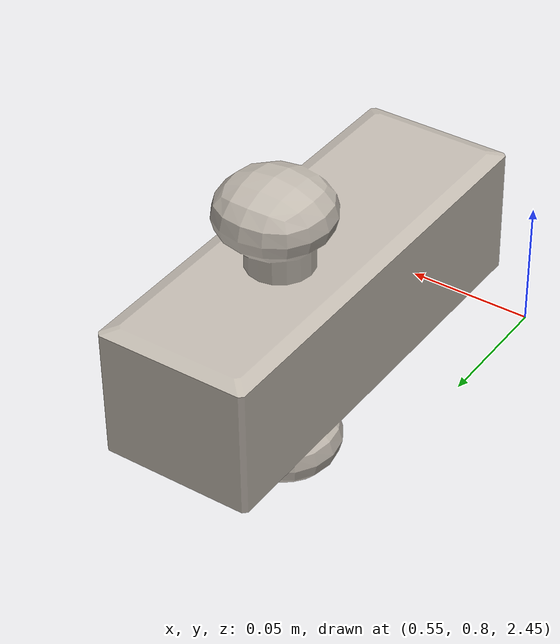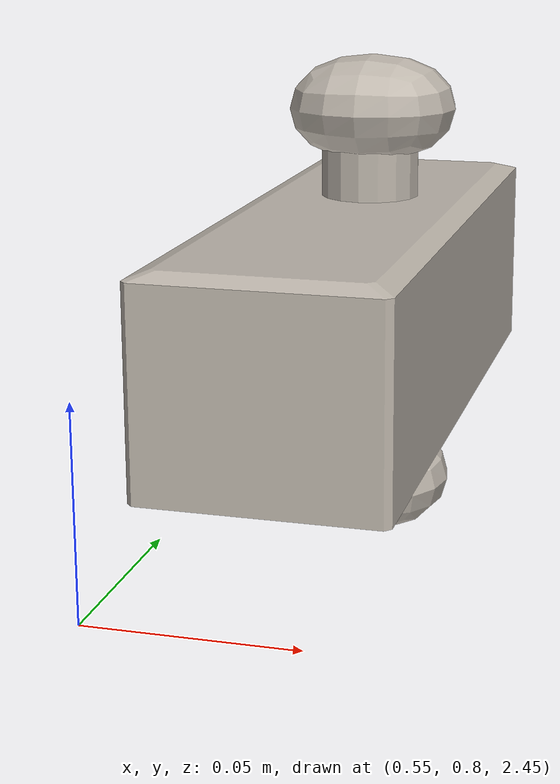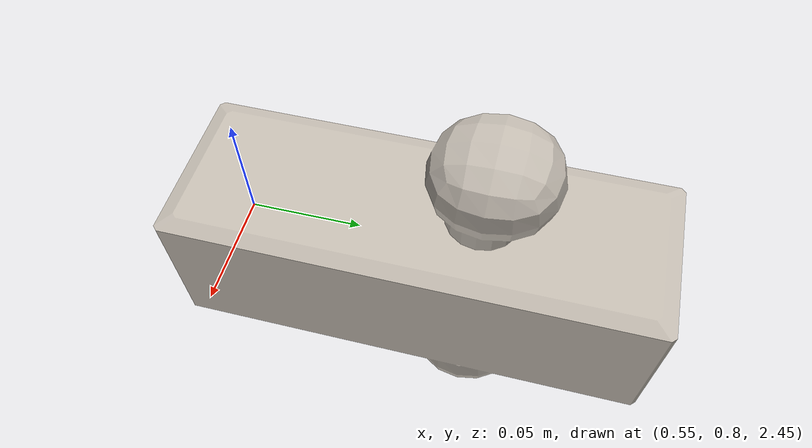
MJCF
<mujoco model="StandardKnob1_382240c9">
  <compiler autolimits="true" boundmass="0.01" angle="radian"/>
  <default>
    <default class="/">
      <default class="__VISUAL_MJT__">
        <geom contype="0" conaffinity="0" group="0" mass="1e-08"/>
      </default>
      <default class="__STRUCTURAL_MJT__">
        <geom contype="8" conaffinity="15" group="4" friction="0.90000000000000002 0.90000000000000002 0.001" density="500" solref="0.025000000000000001 1" solimp="0.998 0.998 0.001"/>
      </default>
      <default class="__DYNAMIC_MJT__">
        <geom contype="1" conaffinity="15" group="4" friction="0.90000000000000002 0.90000000000000002 0.001" density="500" solref="0.025000000000000001 1" solimp="0.998 0.998 0.001"/>
      </default>
      <default class="__ARTICULABLE_DYNAMIC_MJT__">
        <geom contype="0" conaffinity="7" group="4" friction="0.90000000000000002 0.90000000000000002 0.001" density="500" solref="0.025000000000000001 1" solimp="0.998 0.998 0.001"/>
      </default>
    </default>
  </default>
  <asset>
    <texture name="Copper_AlbedoTransparency" type="2d" file="Copper_AlbedoTransparency.png"/>
    <material name="material_Copper_AlbedoTransparency" class="/" texture="Copper_AlbedoTransparency" specular="0.5" shininess="0.5" rgba="1 1 1 1"/>
    <mesh name="StandardKnob1_382240c9_StandardKnob1_382240c9" class="/" file="StandardKnob1_382240c9_StandardKnob1_382240c9/StandardKnob1_382240c9_StandardKnob1_382240c9.obj" scale="1 1 1" inertia="legacy"/>
  </asset>
  <worldbody>
    <body name="StandardKnob1_382240c9">
      <body name="StandardKnob1_382240c9_StandardKnob1_382240c9" pos="-0 0 0" quat="1 0 0 0">
        <geom name="StandardKnob1_382240c9_StandardKnob1_382240c9" class="__VISUAL_MJT__" type="mesh" material="material_Copper_AlbedoTransparency" mesh="StandardKnob1_382240c9_StandardKnob1_382240c9"/>
        <geom name="StandardKnob1_382240c9_StandardKnob1_382240c9_PrimitiveCollider_0" class="__DYNAMIC_MJT__" type="box" size="0.03026885911822319 0.083424091339111328 0.026651591062545776" rgba="0 1 0 1" pos="0.58859997987747192 0.88700002431869507 2.5" quat="0 1 0 0"/>
        <geom name="StandardKnob1_382240c9_StandardKnob1_382240c9_PrimitiveCollider_1" class="__DYNAMIC_MJT__" type="box" size="0.012208700180053711 0.012162581086158752 0.045925401151180267" rgba="0 1 0 1" pos="0.58859997987747192 0.907867431640625 2.5" quat="0 1 0 0"/>
        <geom name="StandardKnob1_382240c9_StandardKnob1_382240c9_PrimitiveCollider_2" class="__DYNAMIC_MJT__" type="capsule" size="0.02016364224255085 0.00038636475801467896" rgba="0 1 0 1" pos="0.58833521604537964 0.9100000262260437 2.5457000732421875" quat="0.70710678118654746 0.70710678118654757 0 0"/>
        <geom name="StandardKnob1_382240c9_StandardKnob1_382240c9_PrimitiveCollider_3" class="__DYNAMIC_MJT__" type="capsule" size="0.021146368235349655 1.0000000000000001e-05" rgba="0 1 0 1" pos="0.58853518962860107 0.90710002183914185 2.4572999477386475" quat="0.70710678118654746 0.70710678118654757 0 0"/>
      </body>
    </body>
  </worldbody>
</mujoco>
